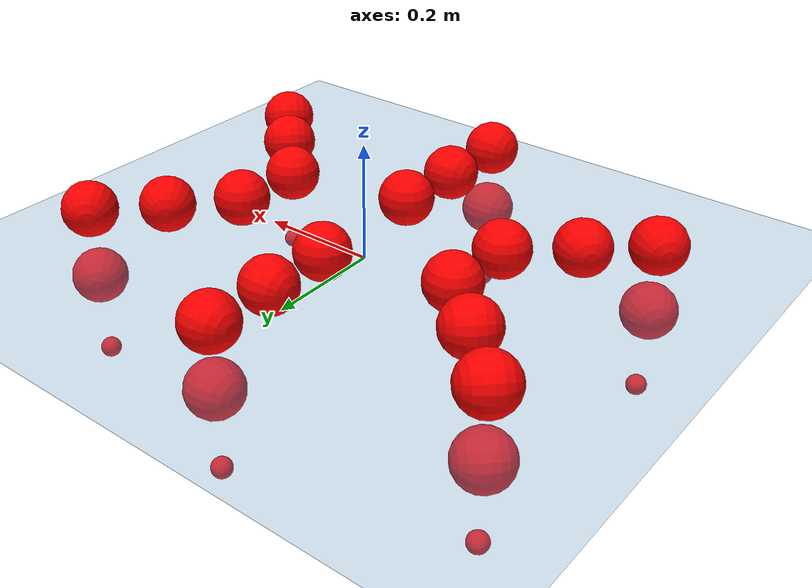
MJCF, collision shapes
<mujoco model="Golem">
  <compiler angle="radian" assetdir="assets" balanceinertia="true" inertiafromgeom="false"/>

  <option timestep="0.005" density="1.2" viscosity="2e-05"/>

  <size nkey="1"/>

  <visual>
    <quality shadowsize="8192"/>
    <map shadowclip="0.5"/>
  </visual>

  <default>
    <default class="/">
      <joint armature="0.01" damping="0.01" frictionloss="0.01"/>
      <geom contype="0" conaffinity="0" group="1" solref="-1000 -80"/>
      <site size="0.01 0.005 0.005" group="5"/>
      <general forcelimited="true" biastype="affine" gainprm="25" biasprm="0 -25 -0.5"/>
      <default class="visual">
        <geom type="mesh" group="2"/>
      </default>
      <default class="collision">
        <geom group="3"/>
      </default>
      <default class="foot">
        <geom size="0.01 0 0" condim="6" group="4" priority="1" solimp="0.015 1 0.01"/>
      </default>
      <default class="reward_collision_sphere">
        <geom group="5" rgba="1 0 0 1"/>
      </default>
    </default>
  </default>

  <asset>
    <texture type="skybox" colorspace="auto" name="//unnamed_texture_0" builtin="gradient" rgb1="0.95 0.95 0.95" rgb2="0.95 0.95 0.95" width="100" height="600"/>
    <texture type="2d" colorspace="auto" name="texplane" builtin="checker" rgb1="0.345 0.575 0.748" rgb2="0.345 0.575 0.748" markrgb="1 1 1" width="512" height="512"/>
    <material name="MatPlane" class="/" texture="texplane" texuniform="true" texrepeat="2 2" specular="0.9"/>
    <mesh name="body" class="/" file="body.stl" scale="0.001 0.001 0.001"/>
    <mesh name="coxa" class="/" file="coxa.stl" scale="0.001 0.001 0.001"/>
    <mesh name="femur" class="/" file="femur.stl" scale="0.001 0.001 0.001"/>
    <mesh name="tibia" class="/" file="tibia.stl" scale="0.001 0.001 0.001"/>
    <mesh name="tarsus" class="/" file="tarsus.stl" scale="0.001 0.001 0.001"/>
  </asset>

  <worldbody>
    <geom name="floor" class="/" size="100 100 0.125" type="plane" group="0" material="MatPlane"/>
    <light name="toplight_shadow" class="/" pos="0 0 5" dir="0.0990148 0.0990148 -0.990148" type="directional" ambient="0.04 0.04 0.04" diffuse="0.55 0.55 0.55" specular="0.12 0.12 0.12"/>
    <light name="toplight_fill" class="/" pos="0 0 5" dir="0.0990148 0.0990148 -0.990148" type="directional" castshadow="false" ambient="0.04 0.04 0.04" diffuse="0.3 0.3 0.3" specular="0.08 0.08 0.08"/>
    <body name="trunk" pos="-0.00342887 0.00073203 0.00117788" quat="1 -6.44045e-05 -2.65904e-05 -0.000148171">
      <inertial pos="0.00282502 0.00203028 -0.00458056" quat="1 5.60245e-05 9.52653e-06 0.000136472" mass="6.24941" diaginertia="0.0529945 0.0202441 0.00974449"/>
      <joint name="//unnamed_joint_0" type="free"/>
      <geom name="//unnamed_geom_1" class="/" pos="0 0 0.063518" quat="1 0 0 0" type="mesh" rgba="0.9 0.9 0.9 1" mesh="body"/>
      <site name="imu" class="/" pos="0.167418 -0.0112264 0.111938" size="0.0117368"/>
      <camera name="track" class="/" pos="0 -2.27818 0" quat="0.707107 0.707107 0 0" mode="trackcom"/>
      <camera name="ego_camera" class="/" pos="0.180631 0 0.0992468" quat="-0.5 -0.5 0.5 0.5"/>
      <body name="coxa_RR" pos="-0.245915 -0.0935242 0.0673253" quat="0.382668 -2.38323e-05 7.33945e-06 -0.923886">
        <inertial pos="0.000719672 0.00406187 -0.00188493" quat="0.999999 -0.000994326 7.60648e-05 -0.00127054" mass="0.349923" diaginertia="0.0534708 0.0198461 0.0100241"/>
        <joint name="coxa_joint_RR" class="/" pos="0 0 0" axis="-0.00758382 0.00128481 -0.99997" stiffness="0.0183326" range="-3.13002 3.12657" armature="0.0126628" damping="0" frictionloss="0.0116013"/>
        <geom name="//unnamed_geom_2" class="/" type="mesh" rgba="0.2 0.2 0.2 1" mesh="coxa"/>
        <geom name="//unnamed_geom_3" class="reward_collision_sphere" size="0.046947" pos="-0.041684 0 0"/>
        <body name="femur_RR" pos="0.0852134 -0.000981273 -0.00522655" quat="0.499466 -0.500391 0.499791 0.500352">
          <inertial pos="-0.00160937 -0.00222172 0.000307066" quat="0.999921 -0.0120438 -0.000911758 0.0034028" mass="0.320776" diaginertia="0.0514224 0.019578 0.00895132"/>
          <joint name="femur_joint_RR" class="/" pos="0 0 0" axis="-0.00698979 0.0121129 -0.999902" stiffness="0.0144213" range="-3.09666 3.14232" armature="0.0102133" damping="0" frictionloss="0.0107773"/>
          <geom name="//unnamed_geom_4" class="/" type="mesh" rgba="0.9 0.9 0.9 1" mesh="femur"/>
          <geom name="//unnamed_geom_5" class="reward_collision_sphere" size="0.046947"/>
          <body name="tibia_RR" pos="0.00181292 -0.119935 -0.00415053" quat="0.000196522 0.999998 0.00134923 0.00140008">
            <inertial pos="0.00216624 -0.00247482 2.62839e-05" quat="1 0.00065107 -0.000387924 0.000219025" mass="0.316477" diaginertia="0.0503717 0.018406 0.00949661"/>
            <joint name="tibia_joint_RR" class="/" pos="0 0 0" axis="-0.000758397 -0.0102936 0.999947" range="-3.1027 3.14952" armature="0.0103879" damping="0.00334728" frictionloss="0.011771"/>
            <geom name="//unnamed_geom_6" class="/" type="mesh" rgba="0.2 0.2 0.2 1" mesh="tibia"/>
            <geom name="//unnamed_geom_7" class="reward_collision_sphere" size="0.046947"/>
            <body name="tarsus_RR" pos="0.121272 0.00158435 -0.00199173" quat="1 -0.000160011 0.000113328 -9.72633e-05">
              <inertial pos="0.0816658 0.000675424 0.00177621" quat="0.494929 0.502873 0.492912 0.509119" mass="0.318181" diaginertia="0.0530859 0.0194542 0.00940349"/>
              <joint name="tarsus_joint_RR" class="/" pos="0 0 0" axis="0.00128862 -0.00616692 0.99998" stiffness="0.00170988" range="-3.09769 3.14451" armature="0.0102169" damping="0.0466347" frictionloss="0.0108049"/>
              <geom name="//unnamed_geom_8" class="/" type="mesh" rgba="0.9 0.9 0.9 1" mesh="tarsus"/>
              <geom name="foot_1" class="foot" size="0.0115219" pos="0.15562 0 0" quat="0 -0.707107 0 0.707107"/>
              <geom name="//unnamed_geom_10" class="reward_collision_sphere" size="0.046947"/>
              <geom name="//unnamed_geom_11" class="reward_collision_sphere" size="0.0176051" pos="0.149368 0 0"/>
              <site name="foot_1" class="foot" pos="0.15562 0 0" quat="0 -0.707107 0 0.707107" size="0.0117368"/>
            </body>
          </body>
        </body>
      </body>
      <body name="coxa_RM" pos="2.05104e-05 -0.150335 0.0671845" quat="0.707256 -0.000119899 -0.00011101 -0.706957">
        <inertial pos="-0.000482304 0.000464125 -0.0016562" quat="0.999961 0.00050795 0.00880009 0.000412739" mass="0.316447" diaginertia="0.0510943 0.0201283 0.0096556"/>
        <joint name="coxa_joint_RM" class="/" pos="0 0 0" axis="-0.00126003 0.011518 -0.999933" range="-3.18442 3.1834" armature="0.0123185" damping="0.0160213" frictionloss="0.0146896"/>
        <geom name="//unnamed_geom_12" class="/" type="mesh" rgba="0.2 0.2 0.2 1" mesh="coxa"/>
        <geom name="//unnamed_geom_13" class="reward_collision_sphere" size="0.046947" pos="-0.041684 0 0"/>
        <body name="femur_RM" pos="0.0848748 -0.00174669 -0.00110912" quat="0.500027 -0.500277 0.498812 0.500882">
          <inertial pos="0.00253809 -0.00212818 -2.49325e-05" quat="0.999931 -0.00395593 0.0109214 -0.00157435" mass="0.305689" diaginertia="0.0489864 0.0185146 0.00904022"/>
          <joint name="femur_joint_RM" class="/" pos="0 0 0" axis="-0.00302667 0.00166207 -0.999994" range="-3.11355 3.14847" armature="0.0107313" damping="0.00942077" frictionloss="0.0117755"/>
          <geom name="//unnamed_geom_14" class="/" type="mesh" rgba="0.9 0.9 0.9 1" mesh="femur"/>
          <geom name="//unnamed_geom_15" class="reward_collision_sphere" size="0.046947"/>
          <body name="tibia_RM" pos="-0.00311445 -0.124017 -0.00391825" quat="-1.88384e-05 1 -2.33337e-05 7.6373e-05">
            <inertial pos="-8.71979e-06 0.0039369 -0.000107209" quat="0.999928 0.009767 -0.00214635 -0.00670152" mass="0.322578" diaginertia="0.0506863 0.0176533 0.00909253"/>
            <joint name="tibia_joint_RM" class="/" pos="0 0 0" axis="0.000480639 0.000290226 1" range="-3.09101 3.0397" armature="0.0119297" damping="0.0182509" frictionloss="0.0132445"/>
            <geom name="//unnamed_geom_16" class="/" type="mesh" rgba="0.2 0.2 0.2 1" mesh="tibia"/>
            <geom name="//unnamed_geom_17" class="reward_collision_sphere" size="0.046947"/>
            <body name="tarsus_RM" pos="0.120672 -0.00153823 0.000318085" quat="1 0.000223753 0.000201285 1.96591e-05">
              <inertial pos="0.0865367 3.28308e-05 -0.000705156" quat="0.50211 0.513072 0.497449 0.487018" mass="0.30721" diaginertia="0.0529862 0.0189288 0.0097173"/>
              <joint name="tarsus_joint_RM" class="/" pos="0 0 0" axis="-0.00155039 -0.00182914 0.999997" range="-3.13211 3.08669" armature="0.012898" damping="0" frictionloss="0.01222"/>
              <geom name="//unnamed_geom_18" class="/" type="mesh" rgba="0.9 0.9 0.9 1" mesh="tarsus"/>
              <geom name="foot_2" class="foot" size="0.0128567" pos="0.15562 0 0" quat="0 -0.707107 0 0.707107"/>
              <geom name="//unnamed_geom_20" class="reward_collision_sphere" size="0.046947"/>
              <geom name="//unnamed_geom_21" class="reward_collision_sphere" size="0.0176051" pos="0.149368 0 0"/>
              <site name="foot_2" class="foot" pos="0.15562 0 0" quat="0 -0.707107 0 0.707107" size="0.0117368"/>
            </body>
          </body>
        </body>
      </body>
      <body name="coxa_RF" pos="0.248372 -0.0983343 0.0612106" quat="0.924235 1.32964e-05 0.000537842 -0.381824">
        <inertial pos="-0.00231692 0.0011297 0.000202319" quat="0.999999 0.000431822 0.00124886 0.000594268" mass="0.330857" diaginertia="0.0518981 0.0202584 0.00963897"/>
        <joint name="coxa_joint_RF" class="/" pos="0 0 0" axis="-0.00167738 0.00301885 -0.999994" stiffness="0.000900739" range="-3.13747 3.19031" armature="0.0107136" damping="0.0336795" frictionloss="0.0122744"/>
        <geom name="//unnamed_geom_22" class="/" type="mesh" rgba="0.2 0.2 0.2 1" mesh="coxa"/>
        <geom name="//unnamed_geom_23" class="reward_collision_sphere" size="0.046947" pos="-0.041684 0 0"/>
        <body name="femur_RF" pos="0.0826585 -0.000629787 0.00551306" quat="0.499396 -0.500452 0.500782 0.499368">
          <inertial pos="0.00207342 -0.000302961 0.00043191" quat="0.999953 -0.00206288 0.00905799 -0.00282973" mass="0.317751" diaginertia="0.0517689 0.0186512 0.00909624"/>
          <joint name="femur_joint_RF" class="/" pos="0 0 0" axis="0.00199841 0.00111371 -0.999997" range="-3.0651 3.18851" armature="0.0129496" damping="0.0129701" frictionloss="0.0111454"/>
          <geom name="//unnamed_geom_24" class="/" type="mesh" rgba="0.9 0.9 0.9 1" mesh="femur"/>
          <geom name="//unnamed_geom_25" class="reward_collision_sphere" size="0.046947"/>
          <body name="tibia_RF" pos="0.00119792 -0.119439 -0.0046999" quat="4.69427e-07 1 5.12296e-05 8.18142e-06">
            <inertial pos="0.00422518 -0.000475734 -0.00267047" quat="0.999999 -0.00120023 0.00101604 0.000665014" mass="0.32168" diaginertia="0.0529445 0.0198937 0.0100308"/>
            <joint name="tibia_joint_RF" class="/" pos="0 0 0" axis="-0.00863734 -0.0171593 0.999815" stiffness="0.00589932" range="-3.19148 3.21562" armature="0.0105162" damping="0.0165277" frictionloss="0.0116907"/>
            <geom name="//unnamed_geom_26" class="/" type="mesh" rgba="0.2 0.2 0.2 1" mesh="tibia"/>
            <geom name="//unnamed_geom_27" class="reward_collision_sphere" size="0.046947"/>
            <body name="tarsus_RF" pos="0.120992 -0.00330857 -0.00153361" quat="0.999999 -0.000508581 0.000769235 0.00128715">
              <inertial pos="0.0847785 0.00255377 -0.000350775" quat="0.499025 0.500126 0.50024 0.500608" mass="0.317628" diaginertia="0.0533262 0.0185762 0.00972691"/>
              <joint name="tarsus_joint_RF" class="/" pos="0 0 0" axis="-0.00274236 -0.00120417 0.999996" range="-3.1833 3.0879" armature="0.0120791" damping="0.00379011" frictionloss="0.0109149"/>
              <geom name="//unnamed_geom_28" class="/" type="mesh" rgba="0.9 0.9 0.9 1" mesh="tarsus"/>
              <geom name="foot_3" class="foot" size="0.0113319" pos="0.15562 0 0" quat="0 -0.707107 0 0.707107"/>
              <geom name="//unnamed_geom_30" class="reward_collision_sphere" size="0.046947"/>
              <geom name="//unnamed_geom_31" class="reward_collision_sphere" size="0.0176051" pos="0.149368 0 0"/>
              <site name="foot_3" class="foot" pos="0.15562 0 0" quat="0 -0.707107 0 0.707107" size="0.0117368"/>
            </body>
          </body>
        </body>
      </body>
      <body name="coxa_LR" pos="-0.243436 0.0932646 0.0689953" quat="0.382517 5.97879e-06 0.000487005 0.923948">
        <inertial pos="0.00300782 0.0012789 0.00473489" quat="0.999814 -0.0122253 0.00569239 0.0138013" mass="0.321693" diaginertia="0.0514322 0.0179036 0.00986784"/>
        <joint name="coxa_joint_LR" class="/" pos="0 0 0" axis="0.0153498 -0.00216491 -0.99988" stiffness="0.00133997" range="-3.19006 3.11435" armature="0.011254" damping="0" frictionloss="0.0124846"/>
        <geom name="//unnamed_geom_32" class="/" type="mesh" rgba="0.2 0.2 0.2 1" mesh="coxa"/>
        <geom name="//unnamed_geom_33" class="reward_collision_sphere" size="0.046947" pos="-0.041684 0 0"/>
        <body name="femur_LR" pos="0.0818907 0.0016564 0.00465139" quat="0.499835 -0.500241 0.499787 0.500137">
          <inertial pos="-0.00211273 0.00122739 -0.0013508" quat="0.999986 0.00272627 0.00136666 0.00427692" mass="0.323897" diaginertia="0.0510293 0.0187671 0.00945509"/>
          <joint name="femur_joint_LR" class="/" pos="0 0 0" axis="0.00279921 -0.00154781 0.999995" stiffness="0.00532579" range="-3.08848 3.12084" armature="0.0131548" damping="0.00695698" frictionloss="0.0142555"/>
          <geom name="//unnamed_geom_34" class="/" type="mesh" rgba="0.9 0.9 0.9 1" mesh="femur"/>
          <geom name="//unnamed_geom_35" class="reward_collision_sphere" size="0.046947"/>
          <body name="tibia_LR" pos="0.000474784 -0.125432 -0.00226602" quat="0.000558095 0.999999 0.000607716 0.00109199">
            <inertial pos="0.000483812 0.000727333 0.000177418" quat="0.999936 0.00353996 -0.00838648 -0.00672067" mass="0.339309" diaginertia="0.0531096 0.0189037 0.00958595"/>
            <joint name="tibia_joint_LR" class="/" pos="0 0 0" axis="0.00419644 -0.000533032 -0.999991" stiffness="0.0108712" range="-3.16572 3.16315" armature="0.0111103" damping="0" frictionloss="0.0123657"/>
            <geom name="//unnamed_geom_36" class="/" type="mesh" rgba="0.2 0.2 0.2 1" mesh="tibia"/>
            <geom name="//unnamed_geom_37" class="reward_collision_sphere" size="0.046947"/>
            <body name="tarsus_LR" pos="0.124256 0.00138905 -0.0010217" quat="0.999999 -0.00109513 0.00115895 0.000159929">
              <inertial pos="0.0791087 0.000252362 0.00407013" quat="0.499449 0.497072 0.503122 0.500339" mass="0.331972" diaginertia="0.0528128 0.0198933 0.009793"/>
              <joint name="tarsus_joint_LR" class="/" pos="0 0 0" axis="-0.00125416 0.0124148 -0.999922" range="-3.10492 3.17395" armature="0.0125909" damping="0.00358784" frictionloss="0.0131159"/>
              <geom name="//unnamed_geom_38" class="/" type="mesh" rgba="0.9 0.9 0.9 1" mesh="tarsus"/>
              <geom name="foot_4" class="foot" size="0.0121153" pos="0.15562 0 0" quat="0.707107 0 -0.707107 0"/>
              <geom name="//unnamed_geom_40" class="reward_collision_sphere" size="0.046947"/>
              <geom name="//unnamed_geom_41" class="reward_collision_sphere" size="0.0176051" pos="0.149368 0 0"/>
              <site name="foot_4" class="foot" pos="0.15562 0 0" quat="0.707107 0 -0.707107 0" size="0.0117368"/>
            </body>
          </body>
        </body>
      </body>
      <body name="coxa_LM" pos="-0.00121914 0.148193 0.0617335" quat="0.70682 -0.000778222 -0.000501692 0.707393">
        <inertial pos="0.00298058 -0.00240935 0.00128376" quat="0.999999 0.000385986 -0.000963217 0.00087763" mass="0.313702" diaginertia="0.0495772 0.0190634 0.00933497"/>
        <joint name="coxa_joint_LM" class="/" pos="0 0 0" axis="-0.0075862 0.00810154 -0.999938" range="-3.17253 3.15626" armature="0.0127854" damping="0.00875645" frictionloss="0.0110255"/>
        <geom name="//unnamed_geom_42" class="/" type="mesh" rgba="0.2 0.2 0.2 1" mesh="coxa"/>
        <geom name="//unnamed_geom_43" class="reward_collision_sphere" size="0.046947" pos="-0.041684 0 0"/>
        <body name="femur_LM" pos="0.0767661 -0.00135677 -0.00380507" quat="0.499902 -0.499866 0.500179 0.500053">
          <inertial pos="0.00163685 0.00168699 -0.00447821" quat="0.999859 0.0147293 -0.00806169 -5.66041e-05" mass="0.33357" diaginertia="0.0543182 0.0210185 0.0102165"/>
          <joint name="femur_joint_LM" class="/" pos="0 0 0" axis="0.00218145 -9.43018e-05 0.999998" stiffness="0.00805803" range="-3.13993 3.16563" armature="0.0122043" damping="0.0154764" frictionloss="0.0112851"/>
          <geom name="//unnamed_geom_44" class="/" type="mesh" rgba="0.9 0.9 0.9 1" mesh="femur"/>
          <geom name="//unnamed_geom_45" class="reward_collision_sphere" size="0.046947"/>
          <body name="tibia_LM" pos="-0.00178971 -0.122449 0.00218979" quat="8.13346e-05 0.999998 -0.00191813 -0.00114299">
            <inertial pos="0.00200087 0.00433431 0.00239519" quat="1 0.000265041 -0.000165034 -0.000676943" mass="0.313473" diaginertia="0.0532426 0.0185464 0.00990054"/>
            <joint name="tibia_joint_LM" class="/" pos="0 0 0" axis="-0.00194872 -0.000983632 -0.999998" range="-3.15612 3.18721" armature="0.0103426" damping="0.0310403" frictionloss="0.0110292"/>
            <geom name="//unnamed_geom_46" class="/" type="mesh" rgba="0.2 0.2 0.2 1" mesh="tibia"/>
            <geom name="//unnamed_geom_47" class="reward_collision_sphere" size="0.046947"/>
            <body name="tarsus_LM" pos="0.11738 -6.5262e-05 0.000351794" quat="0.999997 0.00236492 0.00027735 -0.000741967">
              <inertial pos="0.0834277 0.00032996 -0.00113342" quat="0.500126 0.499774 0.500083 0.500017" mass="0.340892" diaginertia="0.0531701 0.0195872 0.010076"/>
              <joint name="tarsus_joint_LM" class="/" pos="0 0 0" axis="-0.00179475 0.00164463 -0.999997" stiffness="0.0216012" range="-3.22766 3.188" armature="0.0102573" damping="0.0316901" frictionloss="0.0129678"/>
              <geom name="//unnamed_geom_48" class="/" type="mesh" rgba="0.9 0.9 0.9 1" mesh="tarsus"/>
              <geom name="foot_5" class="foot" size="0.0128364" pos="0.15562 0 0" quat="0.707107 0 -0.707107 0"/>
              <geom name="//unnamed_geom_50" class="reward_collision_sphere" size="0.046947"/>
              <geom name="//unnamed_geom_51" class="reward_collision_sphere" size="0.0176051" pos="0.149368 0 0"/>
              <site name="foot_5" class="foot" pos="0.15562 0 0" quat="0.707107 0 -0.707107 0" size="0.0117368"/>
            </body>
          </body>
        </body>
      </body>
      <body name="coxa_LF" pos="0.242948 0.0915167 0.0670612" quat="0.923727 -4.60401e-05 -0.00048172 0.383051">
        <inertial pos="-0.000273851 0.00112391 -0.00208392" quat="1 -6.36539e-05 0.000323516 0.000733056" mass="0.334577" diaginertia="0.0546882 0.0198566 0.00981414"/>
        <joint name="coxa_joint_LF" class="/" pos="0 0 0" axis="3.23221e-05 -0.00406683 -0.999992" stiffness="0.0311835" range="-3.1771 3.05184" armature="0.0104221" damping="0.0332872" frictionloss="0.0117191"/>
        <geom name="//unnamed_geom_52" class="/" type="mesh" rgba="0.2 0.2 0.2 1" mesh="coxa"/>
        <geom name="//unnamed_geom_53" class="reward_collision_sphere" size="0.046947" pos="-0.041684 0 0"/>
        <body name="femur_LF" pos="0.0808544 0.0032965 -0.00321209" quat="0.500811 -0.500162 0.498756 0.500269">
          <inertial pos="-0.00411691 -0.000131275 0.000819236" quat="0.999917 -0.0118388 -0.00498282 -0.00126814" mass="0.303636" diaginertia="0.0501973 0.0187213 0.00928354"/>
          <joint name="femur_joint_LF" class="/" pos="0 0 0" axis="6.85022e-05 -0.000126882 1" range="-3.13075 3.18882" armature="0.0104933" damping="0" frictionloss="0.0102191"/>
          <geom name="//unnamed_geom_54" class="/" type="mesh" rgba="0.9 0.9 0.9 1" mesh="femur"/>
          <geom name="//unnamed_geom_55" class="reward_collision_sphere" size="0.046947"/>
          <body name="tibia_LF" pos="0.00190053 -0.126382 0.000217796" quat="-0.000244306 1 0.000197889 -0.000593403">
            <inertial pos="-0.000300863 -0.000623454 0.00189841" quat="0.999918 0.00544809 -0.006721 -0.00944769" mass="0.31564" diaginertia="0.0499898 0.0194001 0.00956427"/>
            <joint name="tibia_joint_LF" class="/" pos="0 0 0" axis="0.000556804 -0.00770949 -0.99997" range="-3.14941 3.16181" armature="0.0114245" damping="0.00950925" frictionloss="0.0125581"/>
            <geom name="//unnamed_geom_56" class="/" type="mesh" rgba="0.2 0.2 0.2 1" mesh="tibia"/>
            <geom name="//unnamed_geom_57" class="reward_collision_sphere" size="0.046947"/>
            <body name="tarsus_LF" pos="0.125929 -0.00136615 -0.00206322" quat="0.999999 -0.00110192 -0.000964514 -0.000846943">
              <inertial pos="0.0853726 0.0013504 -0.00154286" quat="0.499322 0.501936 0.498922 0.499815" mass="0.338613" diaginertia="0.0541663 0.0194841 0.0101186"/>
              <joint name="tarsus_joint_LF" class="/" pos="0 0 0" axis="0.000820422 0.00773139 -0.99997" stiffness="0.0114603" range="-3.12065 3.16941" armature="0.0119562" damping="0.0311576" frictionloss="0.0111217"/>
              <geom name="//unnamed_geom_58" class="/" type="mesh" rgba="0.9 0.9 0.9 1" mesh="tarsus"/>
              <geom name="foot_6" class="foot" size="0.0124228" pos="0.15562 0 0" quat="0.707107 0 -0.707107 0"/>
              <geom name="//unnamed_geom_60" class="reward_collision_sphere" size="0.046947"/>
              <geom name="//unnamed_geom_61" class="reward_collision_sphere" size="0.0176051" pos="0.149368 0 0"/>
              <site name="foot_6" class="foot" pos="0.15562 0 0" quat="0.707107 0 -0.707107 0" size="0.0117368"/>
            </body>
          </body>
        </body>
      </body>
    </body>
  </worldbody>

  <contact>
    <pair class="/" geom1="floor" geom2="foot_1" name="//unnamed_contact_0"/>
    <pair class="/" geom1="floor" geom2="foot_2" name="//unnamed_contact_1"/>
    <pair class="/" geom1="floor" geom2="foot_3" name="//unnamed_contact_2"/>
    <pair class="/" geom1="floor" geom2="foot_4" name="//unnamed_contact_3"/>
    <pair class="/" geom1="floor" geom2="foot_5" name="//unnamed_contact_4"/>
    <pair class="/" geom1="floor" geom2="foot_6" name="//unnamed_contact_5"/>
  </contact>

  <actuator>
    <general name="coxa_joint_RR" class="/" joint="coxa_joint_RR" forcerange="-9.08903 9.08903" gainprm="28.2573" biasprm="0 -28.2573 -0.557666"/>
    <general name="femur_joint_RR" class="/" joint="femur_joint_RR" forcerange="-8.51796 8.51796" gainprm="28.2573" biasprm="0 -28.2573 -0.557666"/>
    <general name="tibia_joint_RR" class="/" joint="tibia_joint_RR" forcerange="-8.28972 8.28972" gainprm="28.2573" biasprm="0 -28.2573 -0.557666"/>
    <general name="tarsus_joint_RR" class="/" joint="tarsus_joint_RR" forcerange="-8.30127 8.30127" gainprm="28.2573" biasprm="0 -28.2573 -0.557666"/>
    <general name="coxa_joint_RM" class="/" joint="coxa_joint_RM" forcerange="-9.80477 9.80477" gainprm="28.2573" biasprm="0 -28.2573 -0.557666"/>
    <general name="femur_joint_RM" class="/" joint="femur_joint_RM" forcerange="-7.769 7.769" gainprm="28.2573" biasprm="0 -28.2573 -0.557666"/>
    <general name="tibia_joint_RM" class="/" joint="tibia_joint_RM" forcerange="-8.40306 8.40306" gainprm="28.2573" biasprm="0 -28.2573 -0.557666"/>
    <general name="tarsus_joint_RM" class="/" joint="tarsus_joint_RM" forcerange="-9.03367 9.03367" gainprm="28.2573" biasprm="0 -28.2573 -0.557666"/>
    <general name="coxa_joint_RF" class="/" joint="coxa_joint_RF" forcerange="-9.56601 9.56601" gainprm="28.2573" biasprm="0 -28.2573 -0.557666"/>
    <general name="femur_joint_RF" class="/" joint="femur_joint_RF" forcerange="-8.22414 8.22414" gainprm="28.2573" biasprm="0 -28.2573 -0.557666"/>
    <general name="tibia_joint_RF" class="/" joint="tibia_joint_RF" forcerange="-9.96264 9.96264" gainprm="28.2573" biasprm="0 -28.2573 -0.557666"/>
    <general name="tarsus_joint_RF" class="/" joint="tarsus_joint_RF" forcerange="-8.99046 8.99046" gainprm="28.2573" biasprm="0 -28.2573 -0.557666"/>
    <general name="coxa_joint_LR" class="/" joint="coxa_joint_LR" forcerange="-8.5545 8.5545" gainprm="28.2573" biasprm="0 -28.2573 -0.557666"/>
    <general name="femur_joint_LR" class="/" joint="femur_joint_LR" forcerange="-8.67934 8.67934" gainprm="28.2573" biasprm="0 -28.2573 -0.557666"/>
    <general name="tibia_joint_LR" class="/" joint="tibia_joint_LR" forcerange="-8.45958 8.45958" gainprm="28.2573" biasprm="0 -28.2573 -0.557666"/>
    <general name="tarsus_joint_LR" class="/" joint="tarsus_joint_LR" forcerange="-9.31364 9.31364" gainprm="28.2573" biasprm="0 -28.2573 -0.557666"/>
    <general name="coxa_joint_LM" class="/" joint="coxa_joint_LM" forcerange="-8.0692 8.0692" gainprm="28.2573" biasprm="0 -28.2573 -0.557666"/>
    <general name="femur_joint_LM" class="/" joint="femur_joint_LM" forcerange="-8.5682 8.5682" gainprm="28.2573" biasprm="0 -28.2573 -0.557666"/>
    <general name="tibia_joint_LM" class="/" joint="tibia_joint_LM" forcerange="-8.14706 8.14706" gainprm="28.2573" biasprm="0 -28.2573 -0.557666"/>
    <general name="tarsus_joint_LM" class="/" joint="tarsus_joint_LM" forcerange="-8.70644 8.70644" gainprm="28.2573" biasprm="0 -28.2573 -0.557666"/>
    <general name="coxa_joint_LF" class="/" joint="coxa_joint_LF" forcerange="-10.056 10.056" gainprm="28.2573" biasprm="0 -28.2573 -0.557666"/>
    <general name="femur_joint_LF" class="/" joint="femur_joint_LF" forcerange="-8.42329 8.42329" gainprm="28.2573" biasprm="0 -28.2573 -0.557666"/>
    <general name="tibia_joint_LF" class="/" joint="tibia_joint_LF" forcerange="-9.38971 9.38971" gainprm="28.2573" biasprm="0 -28.2573 -0.557666"/>
    <general name="tarsus_joint_LF" class="/" joint="tarsus_joint_LF" forcerange="-8.23655 8.23655" gainprm="28.2573" biasprm="0 -28.2573 -0.557666"/>
  </actuator>

  <sensor>
    <gyro site="imu" name="imu_angular_velocity"/>
    <velocimeter site="imu" name="imu_linear_velocity"/>
    <framelinvel objtype="site" objname="foot_1" name="foot_1_global_linear_velocity"/>
    <framelinvel objtype="site" objname="foot_2" name="foot_2_global_linear_velocity"/>
    <framelinvel objtype="site" objname="foot_3" name="foot_3_global_linear_velocity"/>
    <framelinvel objtype="site" objname="foot_4" name="foot_4_global_linear_velocity"/>
    <framelinvel objtype="site" objname="foot_5" name="foot_5_global_linear_velocity"/>
    <framelinvel objtype="site" objname="foot_6" name="foot_6_global_linear_velocity"/>
  </sensor>

  <keyframe>
    <key name="home" qpos="0 0 0.1457 1 0 0 0 0 0 0 0 0 0 0 0 0 0 0 0 0 0 0 0 0 0 0 0 0 0 0 0"/>
  </keyframe>
</mujoco>
